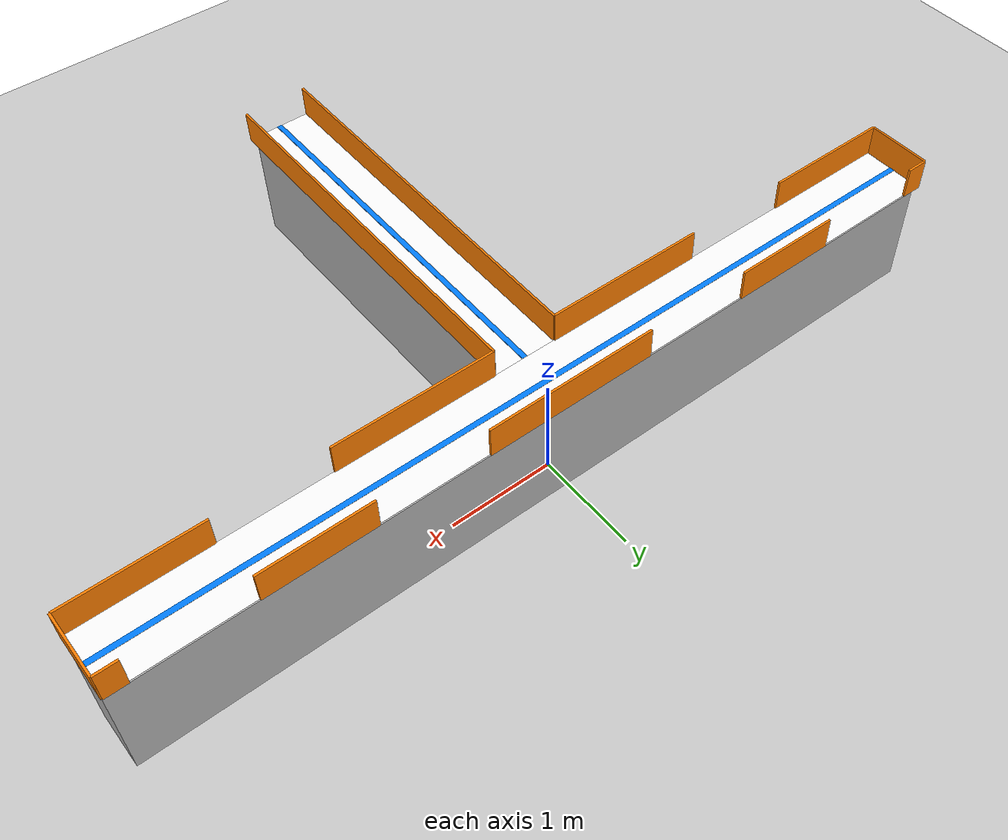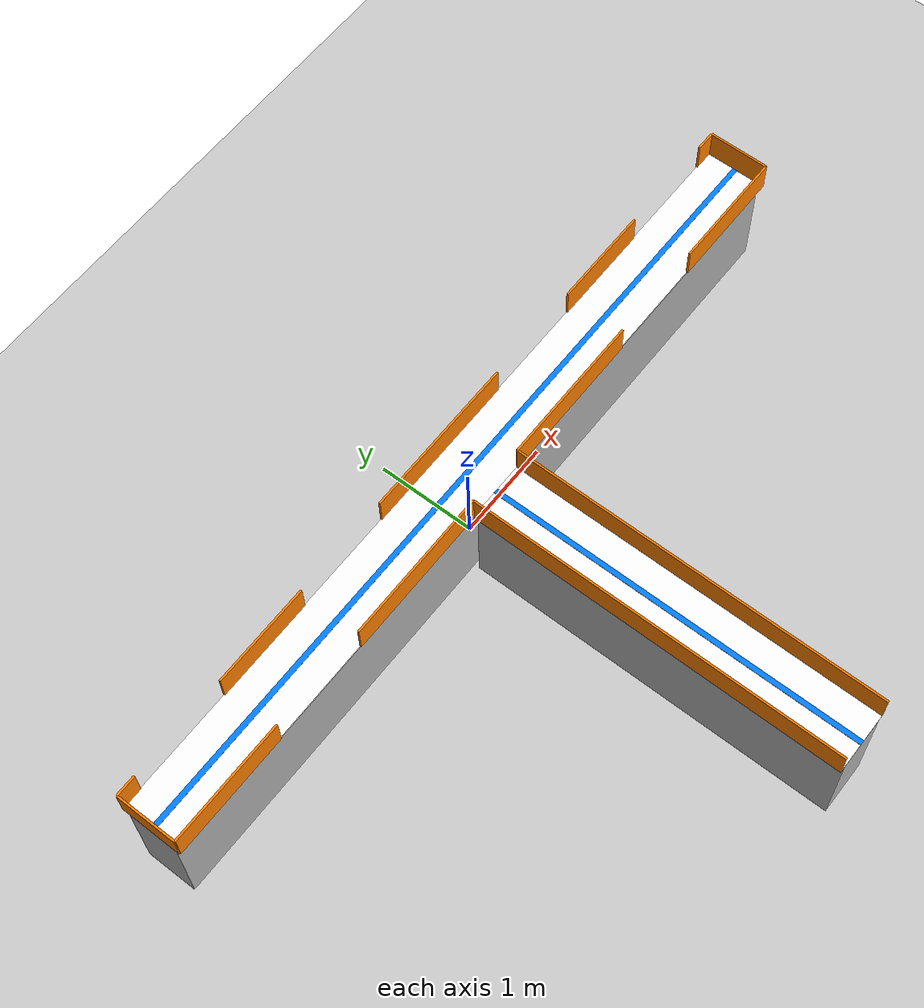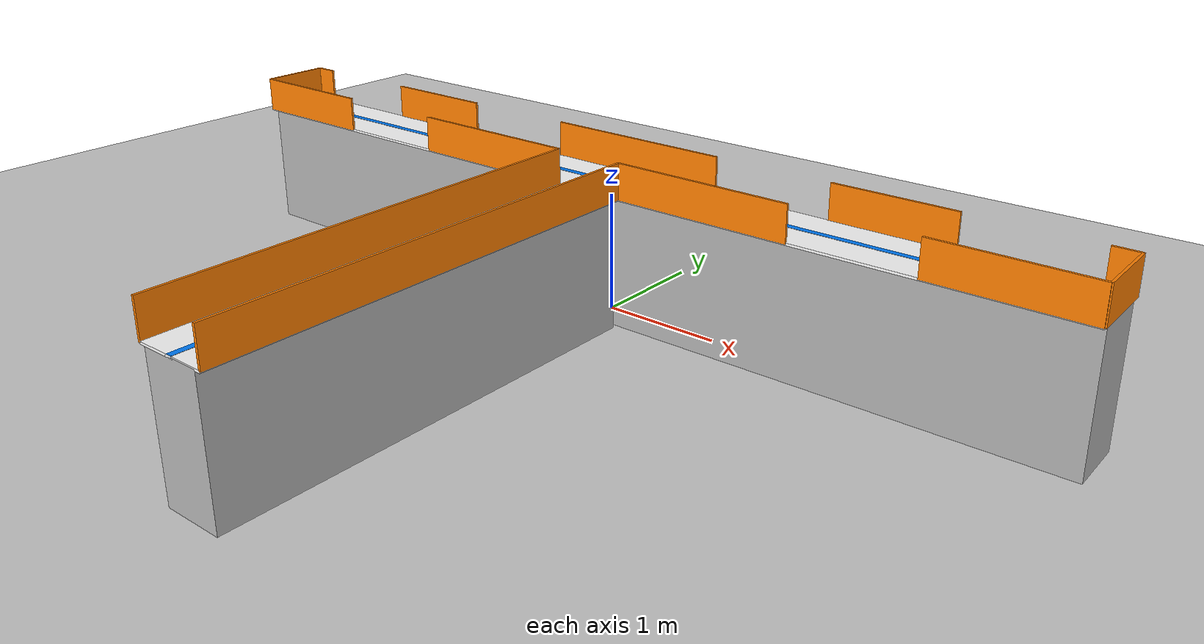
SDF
<sdf version="1.9">
 <world name="hema_t_junction_6_star_final">
  <physics name="1ms" type="ignored">
   <max_step_size>0.001</max_step_size>
   <real_time_factor>1</real_time_factor>
   <real_time_update_rate>1000</real_time_update_rate>
  </physics>
  <plugin name="ignition::gazebo::systems::Physics" filename="ignition-gazebo-physics-system"/>
  <plugin name="ignition::gazebo::systems::SceneBroadcaster" filename="ignition-gazebo-scene-broadcaster-system"/>
  <plugin name="ignition::gazebo::systems::UserCommands" filename="ignition-gazebo-user-commands-system"/>
  <plugin name="ignition::gazebo::systems::Sensors" filename="ignition-gazebo-sensors-system"/>
  <gravity>0 0 -9.8</gravity>
  <magnetic_field>6e-06 2.3e-05 -4.2e-05</magnetic_field>
  <atmosphere type="adiabatic"/>
  <scene><ambient>0.4 0.4 0.4 1</ambient><background>0.7 0.7 0.7 1</background><shadows>true</shadows></scene>
  <model name="ground">
   <static>true</static>
   <link name="l">
    <visual name="v">
     <geometry><plane><normal>0 0 1</normal><size>1 1</size></plane></geometry>
     <material><ambient>0.8 0.8 0.8 1</ambient><diffuse>0.8 0.8 0.8 1</diffuse></material>
    </visual>
    <inertial>
     <mass>1</mass>
     <inertia><ixx>1</ixx><ixy>0</ixy><ixz>0</ixz><iyy>1</iyy><iyz>0</iyz><izz>1</izz></inertia>
    </inertial>
   </link>
  </model>
  <model name="track_stem">
   <static>true</static>
   <pose>0 -2.15 1.1 0 -0 0</pose>
   <link name="l">
    <visual name="v">
     <geometry><box><size>0.6 3.7 0.02</size></box></geometry>
     <material><ambient>1 1 1 1</ambient><diffuse>1 1 1 1</diffuse></material>
    </visual>
    <visual name="ped">
     <pose>0 0 -0.55 0 0 0</pose>
     <geometry><box><size>0.5 3.7 1.1</size></box></geometry>
     <material><ambient>0.7 0.7 0.7 1</ambient><diffuse>0.7 0.7 0.7 1</diffuse></material>
    </visual>
    <visual name="a">
     <pose>0 0 0.01 0 0 0</pose>
     <geometry><box><size>0.05 3.7 0.005</size></box></geometry>
     <material><ambient>0 0.5 1 1</ambient><diffuse>0 0.5 1 1</diffuse><emissive>0 0.2 1 1</emissive></material>
    </visual>
    <inertial>
     <mass>1</mass>
     <inertia><ixx>1</ixx><ixy>0</ixy><ixz>0</ixz><iyy>1</iyy><iyz>0</iyz><izz>1</izz></inertia>
    </inertial>
   </link>
  </model>
  <model name="track_crossbar">
   <static>true</static>
   <pose>0 0 1.1 0 -0 0</pose>
   <link name="l">
    <visual name="v">
     <geometry><box><size>8 0.6 0.02</size></box></geometry>
     <material><ambient>1 1 1 1</ambient><diffuse>1 1 1 1</diffuse></material>
    </visual>
    <visual name="ped">
     <pose>0 0 -0.55 0 0 0</pose>
     <geometry><box><size>8 0.5 1.1</size></box></geometry>
     <material><ambient>0.7 0.7 0.7 1</ambient><diffuse>0.7 0.7 0.7 1</diffuse></material>
    </visual>
    <visual name="a">
     <pose>0 0 0.01 0 0 0</pose>
     <geometry><box><size>8 0.05 0.005</size></box></geometry>
     <material><ambient>0 0.5 1 1</ambient><diffuse>0 0.5 1 1</diffuse><emissive>0 0.2 1 1</emissive></material>
    </visual>
    <inertial>
     <mass>1</mass>
     <inertia><ixx>1</ixx><ixy>0</ixy><ixz>0</ixz><iyy>1</iyy><iyz>0</iyz><izz>1</izz></inertia>
    </inertial>
   </link>
  </model>
  <model name="sw_l">
   <static>true</static>
   <pose>-0.3 -2.15 1.25 0 -0 0</pose>
   <link name="l">
    <visual name="v">
     <geometry><box><size>0.02 3.7 0.3</size></box></geometry>
     <material><ambient>0.8 0.4 0 1</ambient><diffuse>1 0.5 0 1</diffuse></material>
    </visual>
    <inertial>
     <mass>1</mass>
     <inertia><ixx>1</ixx><ixy>0</ixy><ixz>0</ixz><iyy>1</iyy><iyz>0</iyz><izz>1</izz></inertia>
    </inertial>
   </link>
  </model>
  <model name="sw_r">
   <static>true</static>
   <pose>0.3 -2.15 1.25 0 -0 0</pose>
   <link name="l">
    <visual name="v">
     <geometry><box><size>0.02 3.7 0.3</size></box></geometry>
     <material><ambient>0.8 0.4 0 1</ambient><diffuse>1 0.5 0 1</diffuse></material>
    </visual>
    <inertial>
     <mass>1</mass>
     <inertia><ixx>1</ixx><ixy>0</ixy><ixz>0</ixz><iyy>1</iyy><iyz>0</iyz><izz>1</izz></inertia>
    </inertial>
   </link>
  </model>
  <model name="tw1">
   <static>true</static>
   <pose>-3.9 0.3 1.25 0 -0 0</pose>
   <link name="l">
    <visual name="v">
     <geometry><box><size>0.2 0.02 0.3</size></box></geometry>
     <material><ambient>1 0.5 0 1</ambient><diffuse>1 0.5 0 1</diffuse></material>
    </visual>
    <inertial>
     <mass>1</mass>
     <inertia><ixx>1</ixx><ixy>0</ixy><ixz>0</ixz><iyy>1</iyy><iyz>0</iyz><izz>1</izz></inertia>
    </inertial>
   </link>
  </model>
  <model name="tw2">
   <static>true</static>
   <pose>-2.3 0.3 1.25 0 -0 0</pose>
   <link name="l">
    <visual name="v">
     <geometry><box><size>1 0.02 0.3</size></box></geometry>
     <material><ambient>1 0.5 0 1</ambient><diffuse>1 0.5 0 1</diffuse></material>
    </visual>
    <inertial>
     <mass>1</mass>
     <inertia><ixx>1</ixx><ixy>0</ixy><ixz>0</ixz><iyy>1</iyy><iyz>0</iyz><izz>1</izz></inertia>
    </inertial>
   </link>
  </model>
  <model name="tw3">
   <static>true</static>
   <pose>0 0.3 1.25 0 -0 0</pose>
   <link name="l">
    <visual name="v">
     <geometry><box><size>1.6 0.02 0.3</size></box></geometry>
     <material><ambient>1 0.5 0 1</ambient><diffuse>1 0.5 0 1</diffuse></material>
    </visual>
    <inertial>
     <mass>1</mass>
     <inertia><ixx>1</ixx><ixy>0</ixy><ixz>0</ixz><iyy>1</iyy><iyz>0</iyz><izz>1</izz></inertia>
    </inertial>
   </link>
  </model>
  <model name="tw4">
   <static>true</static>
   <pose>2.3 0.3 1.25 0 -0 0</pose>
   <link name="l">
    <visual name="v">
     <geometry><box><size>1 0.02 0.3</size></box></geometry>
     <material><ambient>1 0.5 0 1</ambient><diffuse>1 0.5 0 1</diffuse></material>
    </visual>
    <inertial>
     <mass>1</mass>
     <inertia><ixx>1</ixx><ixy>0</ixy><ixz>0</ixz><iyy>1</iyy><iyz>0</iyz><izz>1</izz></inertia>
    </inertial>
   </link>
  </model>
  <model name="tw5">
   <static>true</static>
   <pose>3.9 0.3 1.25 0 -0 0</pose>
   <link name="l">
    <visual name="v">
     <geometry><box><size>0.2 0.02 0.3</size></box></geometry>
     <material><ambient>1 0.5 0 1</ambient><diffuse>1 0.5 0 1</diffuse></material>
    </visual>
    <inertial>
     <mass>1</mass>
     <inertia><ixx>1</ixx><ixy>0</ixy><ixz>0</ixz><iyy>1</iyy><iyz>0</iyz><izz>1</izz></inertia>
    </inertial>
   </link>
  </model>
  <model name="bw1">
   <static>true</static>
   <pose>-3.4 -0.3 1.25 0 -0 0</pose>
   <link name="l">
    <visual name="v">
     <geometry><box><size>1.2 0.02 0.3</size></box></geometry>
     <material><ambient>1 0.5 0 1</ambient><diffuse>1 0.5 0 1</diffuse></material>
    </visual>
    <inertial>
     <mass>1</mass>
     <inertia><ixx>1</ixx><ixy>0</ixy><ixz>0</ixz><iyy>1</iyy><iyz>0</iyz><izz>1</izz></inertia>
    </inertial>
   </link>
  </model>
  <model name="bw2">
   <static>true</static>
   <pose>-1.05 -0.3 1.25 0 -0 0</pose>
   <link name="l">
    <visual name="v">
     <geometry><box><size>1.5 0.02 0.3</size></box></geometry>
     <material><ambient>1 0.5 0 1</ambient><diffuse>1 0.5 0 1</diffuse></material>
    </visual>
    <inertial>
     <mass>1</mass>
     <inertia><ixx>1</ixx><ixy>0</ixy><ixz>0</ixz><iyy>1</iyy><iyz>0</iyz><izz>1</izz></inertia>
    </inertial>
   </link>
  </model>
  <model name="bw3">
   <static>true</static>
   <pose>1.05 -0.3 1.25 0 -0 0</pose>
   <link name="l">
    <visual name="v">
     <geometry><box><size>1.5 0.02 0.3</size></box></geometry>
     <material><ambient>1 0.5 0 1</ambient><diffuse>1 0.5 0 1</diffuse></material>
    </visual>
    <inertial>
     <mass>1</mass>
     <inertia><ixx>1</ixx><ixy>0</ixy><ixz>0</ixz><iyy>1</iyy><iyz>0</iyz><izz>1</izz></inertia>
    </inertial>
   </link>
  </model>
  <model name="bw4">
   <static>true</static>
   <pose>3.4 -0.3 1.25 0 -0 0</pose>
   <link name="l">
    <visual name="v">
     <geometry><box><size>1.2 0.02 0.3</size></box></geometry>
     <material><ambient>1 0.5 0 1</ambient><diffuse>1 0.5 0 1</diffuse></material>
    </visual>
    <inertial>
     <mass>1</mass>
     <inertia><ixx>1</ixx><ixy>0</ixy><ixz>0</ixz><iyy>1</iyy><iyz>0</iyz><izz>1</izz></inertia>
    </inertial>
   </link>
  </model>
  <model name="el">
   <static>true</static>
   <pose>-4 0 1.25 0 -0 0</pose>
   <link name="l">
    <visual name="v">
     <geometry><box><size>0.02 0.6 0.3</size></box></geometry>
     <material><ambient>1 0.5 0 1</ambient><diffuse>1 0.5 0 1</diffuse></material>
    </visual>
    <inertial>
     <mass>1</mass>
     <inertia><ixx>1</ixx><ixy>0</ixy><ixz>0</ixz><iyy>1</iyy><iyz>0</iyz><izz>1</izz></inertia>
    </inertial>
   </link>
  </model>
  <model name="er">
   <static>true</static>
   <pose>4 0 1.25 0 -0 0</pose>
   <link name="l">
    <visual name="v">
     <geometry><box><size>0.02 0.6 0.3</size></box></geometry>
     <material><ambient>1 0.5 0 1</ambient><diffuse>1 0.5 0 1</diffuse></material>
    </visual>
    <inertial>
     <mass>1</mass>
     <inertia><ixx>1</ixx><ixy>0</ixy><ixz>0</ixz><iyy>1</iyy><iyz>0</iyz><izz>1</izz></inertia>
    </inertial>
   </link>
  </model>
  <light name="sun" type="directional">
   <pose>0 0 10 0 -0 0</pose>
   <cast_shadows>false</cast_shadows>
   <intensity>1</intensity>
   <direction>-0.5 0.1 -0.9</direction>
   <diffuse>1 1 1 1</diffuse>
   <specular>1 1 1 1</specular>
   <attenuation><range>10</range><linear>1</linear><constant>1</constant><quadratic>0</quadratic></attenuation>
   <spot><inner_angle>0</inner_angle><outer_angle>0</outer_angle><falloff>0</falloff></spot>
  </light>
 </world>
</sdf>
